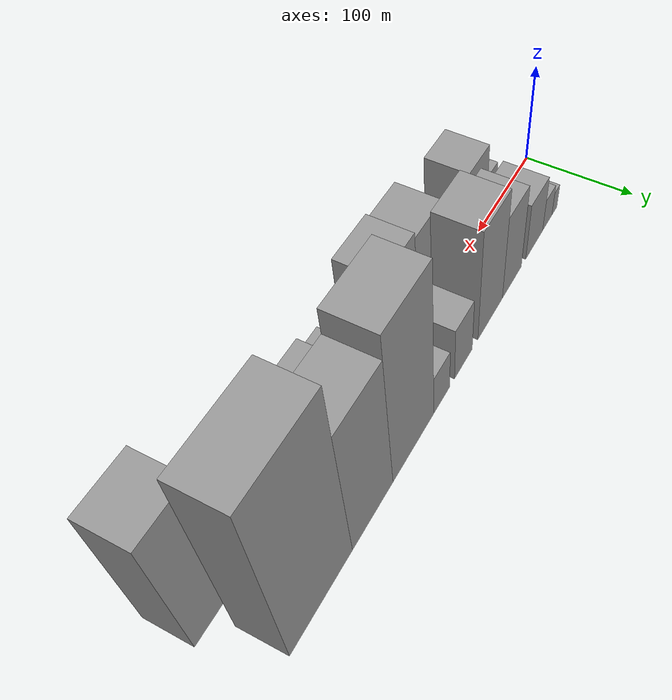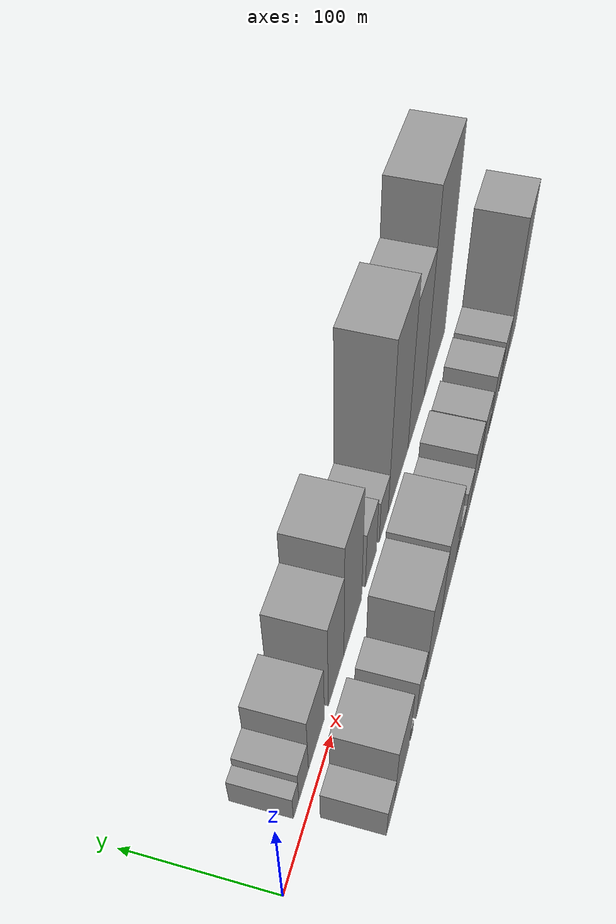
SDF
<sdf version="1.6">
 <world name="default">
  <scene>
   <sky><clouds><speed>12</speed></clouds></sky>
   <ambient>0.4 0.4 0.4 1</ambient>
   <background>0.7 0.7 0.7 1</background>
   <shadows>1</shadows>
  </scene>
  <gravity>0 0 -9.8066</gravity>
  <magnetic_field>6e-06 2.3e-05 -4.2e-05</magnetic_field>
  <physics default="0" name="default_physics" type="ode">
   <ode>
    <solver>
     <type>quick</type>
     <iters>10</iters>
     <sor>1.0</sor>
     <use_dynamic_moi_rescaling>0</use_dynamic_moi_rescaling>
    </solver>
    <constraints>
     <cfm>0</cfm>
     <erp>0.2</erp>
     <contact_max_correcting_vel>100</contact_max_correcting_vel>
     <contact_surface_layer>0.001</contact_surface_layer>
    </constraints>
   </ode>
   <max_step_size>0.004</max_step_size>
   <real_time_factor>1</real_time_factor>
   <real_time_update_rate>250</real_time_update_rate>
  </physics>
  <light name="sun" type="directional">
   <pose>0 0 10 0 0 0</pose>
   <diffuse>0.8 0.8 0.8 1</diffuse>
   <specular>0.2 0.2 0.2 1</specular>
   <attenuation>
    <range>1000</range>
    <constant>0.9</constant>
    <linear>0.01</linear>
    <quadratic>0.001</quadratic>
   </attenuation>
   <direction>-0.5 0.1 -0.9</direction>
  </light>
  <model name="building_1">
   <static>1</static>
   <pose>49.5234 27.5000 0 0.000000 0.000000 1.570796</pose>
   <link name="link">
    <pose>0 0 13.50 0 0 0</pose>
    <collision name="collision"><geometry><box><size>40.0000 11.0468 27.0000</size></box></geometry></collision>
    <visual name="visual">
     <cast_shadows>0</cast_shadows>
     <geometry><box><size>40.0000 11.0468 27.0000</size></box></geometry>
     <material>
      <script>
       <uri>model://grey_wall/materials/scripts</uri>
       <uri>model://grey_wall/materials/textures</uri>
       <name>vrc/grey_wall</name>
      </script>
     </material>
    </visual>
   </link>
  </model>
  <model name="building_2">
   <static>1</static>
   <pose>64.9606 27.5000 0 0.000000 0.000000 1.570796</pose>
   <link name="link">
    <pose>0 0 18.00 0 0 0</pose>
    <collision name="collision"><geometry><box><size>40.0000 19.8275 36.0000</size></box></geometry></collision>
    <visual name="visual">
     <cast_shadows>0</cast_shadows>
     <geometry><box><size>40.0000 19.8275 36.0000</size></box></geometry>
     <material>
      <script>
       <uri>model://grey_wall/materials/scripts</uri>
       <uri>model://grey_wall/materials/textures</uri>
       <name>vrc/grey_wall</name>
      </script>
     </material>
    </visual>
   </link>
  </model>
  <model name="building_3">
   <static>1</static>
   <pose>92.3410 27.5000 0 0.000000 0.000000 1.570796</pose>
   <link name="link">
    <pose>0 0 31.50 0 0 0</pose>
    <collision name="collision"><geometry><box><size>40.0000 34.9333 63.0000</size></box></geometry></collision>
    <visual name="visual">
     <cast_shadows>0</cast_shadows>
     <geometry><box><size>40.0000 34.9333 63.0000</size></box></geometry>
     <material>
      <script>
       <uri>model://grey_wall/materials/scripts</uri>
       <uri>model://grey_wall/materials/textures</uri>
       <name>vrc/grey_wall</name>
      </script>
     </material>
    </visual>
   </link>
  </model>
  <model name="building_4">
   <static>1</static>
   <pose>137.1429 27.5000 0 0.000000 0.000000 1.570796</pose>
   <link name="link">
    <pose>0 0 46.50 0 0 0</pose>
    <collision name="collision"><geometry><box><size>40.0000 36.6705 93.0000</size></box></geometry></collision>
    <visual name="visual">
     <cast_shadows>0</cast_shadows>
     <geometry><box><size>40.0000 36.6705 93.0000</size></box></geometry>
     <material>
      <script>
       <uri>model://grey_wall/materials/scripts</uri>
       <uri>model://grey_wall/materials/textures</uri>
       <name>vrc/grey_wall</name>
      </script>
     </material>
    </visual>
   </link>
  </model>
  <model name="building_5">
   <static>1</static>
   <pose>177.8812 27.5000 0 0.000000 0.000000 1.570796</pose>
   <link name="link">
    <pose>0 0 61.50 0 0 0</pose>
    <collision name="collision"><geometry><box><size>40.0000 44.8061 123.0000</size></box></geometry></collision>
    <visual name="visual">
     <cast_shadows>0</cast_shadows>
     <geometry><box><size>40.0000 44.8061 123.0000</size></box></geometry>
     <material>
      <script>
       <uri>model://grey_wall/materials/scripts</uri>
       <uri>model://grey_wall/materials/textures</uri>
       <name>vrc/grey_wall</name>
      </script>
     </material>
    </visual>
   </link>
  </model>
  <model name="building_6">
   <static>1</static>
   <pose>225.2993 27.5000 0 0.000000 0.000000 1.570796</pose>
   <link name="link">
    <pose>0 0 30.00 0 0 0</pose>
    <collision name="collision"><geometry><box><size>40.0000 30.0302 60.0000</size></box></geometry></collision>
    <visual name="visual">
     <cast_shadows>0</cast_shadows>
     <geometry><box><size>40.0000 30.0302 60.0000</size></box></geometry>
     <material>
      <script>
       <uri>model://grey_wall/materials/scripts</uri>
       <uri>model://grey_wall/materials/textures</uri>
       <name>vrc/grey_wall</name>
      </script>
     </material>
    </visual>
   </link>
  </model>
  <model name="building_7">
   <static>1</static>
   <pose>261.1327 27.5000 0 0.000000 0.000000 1.570796</pose>
   <link name="link">
    <pose>0 0 22.50 0 0 0</pose>
    <collision name="collision"><geometry><box><size>40.0000 25.6365 45.0000</size></box></geometry></collision>
    <visual name="visual">
     <cast_shadows>0</cast_shadows>
     <geometry><box><size>40.0000 25.6365 45.0000</size></box></geometry>
     <material>
      <script>
       <uri>model://grey_wall/materials/scripts</uri>
       <uri>model://grey_wall/materials/textures</uri>
       <name>vrc/grey_wall</name>
      </script>
     </material>
    </visual>
   </link>
  </model>
  <model name="building_8">
   <static>1</static>
   <pose>304.5386 27.5000 0 0.000000 0.000000 1.570796</pose>
   <link name="link">
    <pose>0 0 87.00 0 0 0</pose>
    <collision name="collision"><geometry><box><size>40.0000 61.1754 174.0000</size></box></geometry></collision>
    <visual name="visual">
     <cast_shadows>0</cast_shadows>
     <geometry><box><size>40.0000 61.1754 174.0000</size></box></geometry>
     <material>
      <script>
       <uri>model://grey_wall/materials/scripts</uri>
       <uri>model://grey_wall/materials/textures</uri>
       <name>vrc/grey_wall</name>
      </script>
     </material>
    </visual>
   </link>
  </model>
  <model name="building_9">
   <static>1</static>
   <pose>362.6534 27.5000 0 0.000000 0.000000 1.570796</pose>
   <link name="link">
    <pose>0 0 75.00 0 0 0</pose>
    <collision name="collision"><geometry><box><size>40.0000 55.0542 150.0000</size></box></geometry></collision>
    <visual name="visual">
     <cast_shadows>0</cast_shadows>
     <geometry><box><size>40.0000 55.0542 150.0000</size></box></geometry>
     <material>
      <script>
       <uri>model://grey_wall/materials/scripts</uri>
       <uri>model://grey_wall/materials/textures</uri>
       <name>vrc/grey_wall</name>
      </script>
     </material>
    </visual>
   </link>
  </model>
  <model name="building_10">
   <static>1</static>
   <pose>428.3415 27.5000 0 0.000000 0.000000 1.570796</pose>
   <link name="link">
    <pose>0 0 100.50 0 0 0</pose>
    <collision name="collision"><geometry><box><size>40.0000 76.3220 201.0000</size></box></geometry></collision>
    <visual name="visual">
     <cast_shadows>0</cast_shadows>
     <geometry><box><size>40.0000 76.3220 201.0000</size></box></geometry>
     <material>
      <script>
       <uri>model://grey_wall/materials/scripts</uri>
       <uri>model://grey_wall/materials/textures</uri>
       <name>vrc/grey_wall</name>
      </script>
     </material>
    </visual>
   </link>
  </model>
  <model name="building_11">
   <static>1</static>
   <pose>58.8940 -27.5000 0 0.000000 0.000000 1.570796</pose>
   <link name="link">
    <pose>0 0 16.50 0 0 0</pose>
    <collision name="collision"><geometry><box><size>40.0000 19.7880 33.0000</size></box></geometry></collision>
    <visual name="visual">
     <cast_shadows>0</cast_shadows>
     <geometry><box><size>40.0000 19.7880 33.0000</size></box></geometry>
     <material>
      <script>
       <uri>model://grey_wall/materials/scripts</uri>
       <uri>model://grey_wall/materials/textures</uri>
       <name>vrc/grey_wall</name>
      </script>
     </material>
    </visual>
   </link>
  </model>
  <model name="building_12">
   <static>1</static>
   <pose>87.5025 -27.5000 0 0.000000 0.000000 1.570796</pose>
   <link name="link">
    <pose>0 0 34.50 0 0 0</pose>
    <collision name="collision"><geometry><box><size>40.0000 37.4291 69.0000</size></box></geometry></collision>
    <visual name="visual">
     <cast_shadows>0</cast_shadows>
     <geometry><box><size>40.0000 37.4291 69.0000</size></box></geometry>
     <material>
      <script>
       <uri>model://grey_wall/materials/scripts</uri>
       <uri>model://grey_wall/materials/textures</uri>
       <name>vrc/grey_wall</name>
      </script>
     </material>
    </visual>
   </link>
  </model>
  <model name="building_13">
   <static>1</static>
   <pose>113.2656 -27.5000 0 0.000000 0.000000 1.570796</pose>
   <link name="link">
    <pose>0 0 7.50 0 0 0</pose>
    <collision name="collision"><geometry><box><size>40.0000 6.0970 15.0000</size></box></geometry></collision>
    <visual name="visual">
     <cast_shadows>0</cast_shadows>
     <geometry><box><size>40.0000 6.0970 15.0000</size></box></geometry>
     <material>
      <script>
       <uri>model://grey_wall/materials/scripts</uri>
       <uri>model://grey_wall/materials/textures</uri>
       <name>vrc/grey_wall</name>
      </script>
     </material>
    </visual>
   </link>
  </model>
  <model name="building_14">
   <static>1</static>
   <pose>136.6493 -27.5000 0 0.000000 0.000000 1.570796</pose>
   <link name="link">
    <pose>0 0 22.50 0 0 0</pose>
    <collision name="collision"><geometry><box><size>40.0000 22.6705 45.0000</size></box></geometry></collision>
    <visual name="visual">
     <cast_shadows>0</cast_shadows>
     <geometry><box><size>40.0000 22.6705 45.0000</size></box></geometry>
     <material>
      <script>
       <uri>model://grey_wall/materials/scripts</uri>
       <uri>model://grey_wall/materials/textures</uri>
       <name>vrc/grey_wall</name>
      </script>
     </material>
    </visual>
   </link>
  </model>
  <model name="building_15">
   <static>1</static>
   <pose>174.4531 -27.5000 0 0.000000 0.000000 1.570796</pose>
   <link name="link">
    <pose>0 0 42.00 0 0 0</pose>
    <collision name="collision"><geometry><box><size>40.0000 42.9371 84.0000</size></box></geometry></collision>
    <visual name="visual">
     <cast_shadows>0</cast_shadows>
     <geometry><box><size>40.0000 42.9371 84.0000</size></box></geometry>
     <material>
      <script>
       <uri>model://grey_wall/materials/scripts</uri>
       <uri>model://grey_wall/materials/textures</uri>
       <name>vrc/grey_wall</name>
      </script>
     </material>
    </visual>
   </link>
  </model>
  <model name="building_16">
   <static>1</static>
   <pose>219.8543 -27.5000 0 0.000000 0.000000 1.570796</pose>
   <link name="link">
    <pose>0 0 45.00 0 0 0</pose>
    <collision name="collision"><geometry><box><size>40.0000 47.8654 90.0000</size></box></geometry></collision>
    <visual name="visual">
     <cast_shadows>0</cast_shadows>
     <geometry><box><size>40.0000 47.8654 90.0000</size></box></geometry>
     <material>
      <script>
       <uri>model://grey_wall/materials/scripts</uri>
       <uri>model://grey_wall/materials/textures</uri>
       <name>vrc/grey_wall</name>
      </script>
     </material>
    </visual>
   </link>
  </model>
  <model name="building_17">
   <static>1</static>
   <pose>248.3898 -27.5000 0 0.000000 0.000000 1.570796</pose>
   <link name="link">
    <pose>0 0 10.50 0 0 0</pose>
    <collision name="collision"><geometry><box><size>40.0000 9.2055 21.0000</size></box></geometry></collision>
    <visual name="visual">
     <cast_shadows>0</cast_shadows>
     <geometry><box><size>40.0000 9.2055 21.0000</size></box></geometry>
     <material>
      <script>
       <uri>model://grey_wall/materials/scripts</uri>
       <uri>model://grey_wall/materials/textures</uri>
       <name>vrc/grey_wall</name>
      </script>
     </material>
    </visual>
   </link>
  </model>
  <model name="building_18">
   <static>1</static>
   <pose>262.3675 -27.5000 0 0.000000 0.000000 1.570796</pose>
   <link name="link">
    <pose>0 0 16.50 0 0 0</pose>
    <collision name="collision"><geometry><box><size>40.0000 18.7498 33.0000</size></box></geometry></collision>
    <visual name="visual">
     <cast_shadows>0</cast_shadows>
     <geometry><box><size>40.0000 18.7498 33.0000</size></box></geometry>
     <material>
      <script>
       <uri>model://grey_wall/materials/scripts</uri>
       <uri>model://grey_wall/materials/textures</uri>
       <name>vrc/grey_wall</name>
      </script>
     </material>
    </visual>
   </link>
  </model>
  <model name="building_19">
   <static>1</static>
   <pose>283.4699 -27.5000 0 0.000000 0.000000 1.570796</pose>
   <link name="link">
    <pose>0 0 22.50 0 0 0</pose>
    <collision name="collision"><geometry><box><size>40.0000 23.4550 45.0000</size></box></geometry></collision>
    <visual name="visual">
     <cast_shadows>0</cast_shadows>
     <geometry><box><size>40.0000 23.4550 45.0000</size></box></geometry>
     <material>
      <script>
       <uri>model://grey_wall/materials/scripts</uri>
       <uri>model://grey_wall/materials/textures</uri>
       <name>vrc/grey_wall</name>
      </script>
     </material>
    </visual>
   </link>
  </model>
  <model name="building_20">
   <static>1</static>
   <pose>310.4709 -27.5000 0 0.000000 0.000000 1.570796</pose>
   <link name="link">
    <pose>0 0 30.00 0 0 0</pose>
    <collision name="collision"><geometry><box><size>40.0000 30.5470 60.0000</size></box></geometry></collision>
    <visual name="visual">
     <cast_shadows>0</cast_shadows>
     <geometry><box><size>40.0000 30.5470 60.0000</size></box></geometry>
     <material>
      <script>
       <uri>model://grey_wall/materials/scripts</uri>
       <uri>model://grey_wall/materials/textures</uri>
       <name>vrc/grey_wall</name>
      </script>
     </material>
    </visual>
   </link>
  </model>
  <model name="building_21">
   <static>1</static>
   <pose>330.0620 -27.5000 0 0.000000 0.000000 1.570796</pose>
   <link name="link">
    <pose>0 0 9.00 0 0 0</pose>
    <collision name="collision"><geometry><box><size>40.0000 8.6353 18.0000</size></box></geometry></collision>
    <visual name="visual">
     <cast_shadows>0</cast_shadows>
     <geometry><box><size>40.0000 8.6353 18.0000</size></box></geometry>
     <material>
      <script>
       <uri>model://grey_wall/materials/scripts</uri>
       <uri>model://grey_wall/materials/textures</uri>
       <name>vrc/grey_wall</name>
      </script>
     </material>
    </visual>
   </link>
  </model>
  <model name="building_22">
   <static>1</static>
   <pose>349.1088 -27.5000 0 0.000000 0.000000 1.570796</pose>
   <link name="link">
    <pose>0 0 25.50 0 0 0</pose>
    <collision name="collision"><geometry><box><size>40.0000 29.4584 51.0000</size></box></geometry></collision>
    <visual name="visual">
     <cast_shadows>0</cast_shadows>
     <geometry><box><size>40.0000 29.4584 51.0000</size></box></geometry>
     <material>
      <script>
       <uri>model://grey_wall/materials/scripts</uri>
       <uri>model://grey_wall/materials/textures</uri>
       <name>vrc/grey_wall</name>
      </script>
     </material>
    </visual>
   </link>
  </model>
  <model name="building_23">
   <static>1</static>
   <pose>371.7094 -27.5000 0 0.000000 0.000000 1.570796</pose>
   <link name="link">
    <pose>0 0 9.00 0 0 0</pose>
    <collision name="collision"><geometry><box><size>40.0000 7.7428 18.0000</size></box></geometry></collision>
    <visual name="visual">
     <cast_shadows>0</cast_shadows>
     <geometry><box><size>40.0000 7.7428 18.0000</size></box></geometry>
     <material>
      <script>
       <uri>model://grey_wall/materials/scripts</uri>
       <uri>model://grey_wall/materials/textures</uri>
       <name>vrc/grey_wall</name>
      </script>
     </material>
    </visual>
   </link>
  </model>
  <model name="building_24">
   <static>1</static>
   <pose>391.3219 -27.5000 0 0.000000 0.000000 1.570796</pose>
   <link name="link">
    <pose>0 0 27.00 0 0 0</pose>
    <collision name="collision"><geometry><box><size>40.0000 31.4823 54.0000</size></box></geometry></collision>
    <visual name="visual">
     <cast_shadows>0</cast_shadows>
     <geometry><box><size>40.0000 31.4823 54.0000</size></box></geometry>
     <material>
      <script>
       <uri>model://grey_wall/materials/scripts</uri>
       <uri>model://grey_wall/materials/textures</uri>
       <name>vrc/grey_wall</name>
      </script>
     </material>
    </visual>
   </link>
  </model>
  <model name="building_25">
   <static>1</static>
   <pose>427.0341 -27.5000 0 0.000000 0.000000 1.570796</pose>
   <link name="link">
    <pose>0 0 27.00 0 0 0</pose>
    <collision name="collision"><geometry><box><size>40.0000 29.9421 54.0000</size></box></geometry></collision>
    <visual name="visual">
     <cast_shadows>0</cast_shadows>
     <geometry><box><size>40.0000 29.9421 54.0000</size></box></geometry>
     <material>
      <script>
       <uri>model://grey_wall/materials/scripts</uri>
       <uri>model://grey_wall/materials/textures</uri>
       <name>vrc/grey_wall</name>
      </script>
     </material>
    </visual>
   </link>
  </model>
  <model name="building_26">
   <static>1</static>
   <pose>465.2822 -27.5000 0 0.000000 0.000000 1.570796</pose>
   <link name="link">
    <pose>0 0 73.50 0 0 0</pose>
    <collision name="collision"><geometry><box><size>40.0000 46.5541 147.0000</size></box></geometry></collision>
    <visual name="visual">
     <cast_shadows>0</cast_shadows>
     <geometry><box><size>40.0000 46.5541 147.0000</size></box></geometry>
     <material>
      <script>
       <uri>model://grey_wall/materials/scripts</uri>
       <uri>model://grey_wall/materials/textures</uri>
       <name>vrc/grey_wall</name>
      </script>
     </material>
    </visual>
   </link>
  </model>
 </world>
</sdf>
